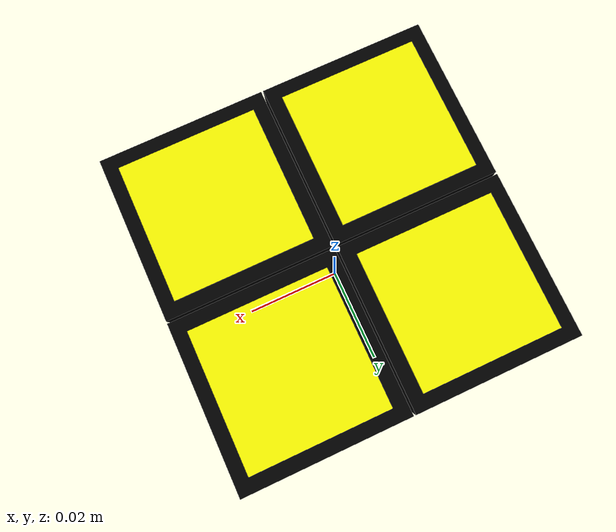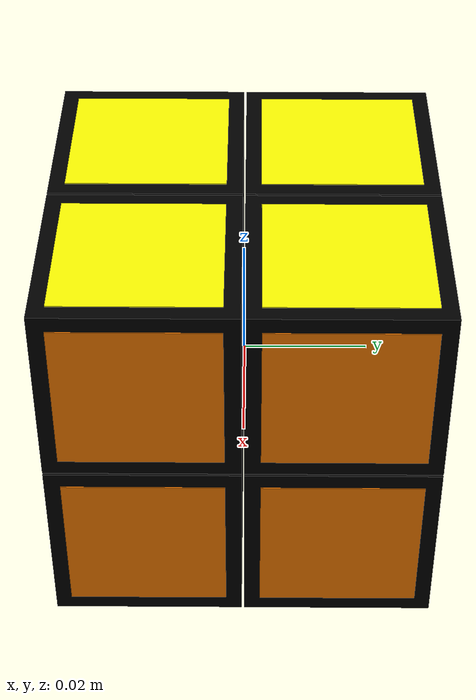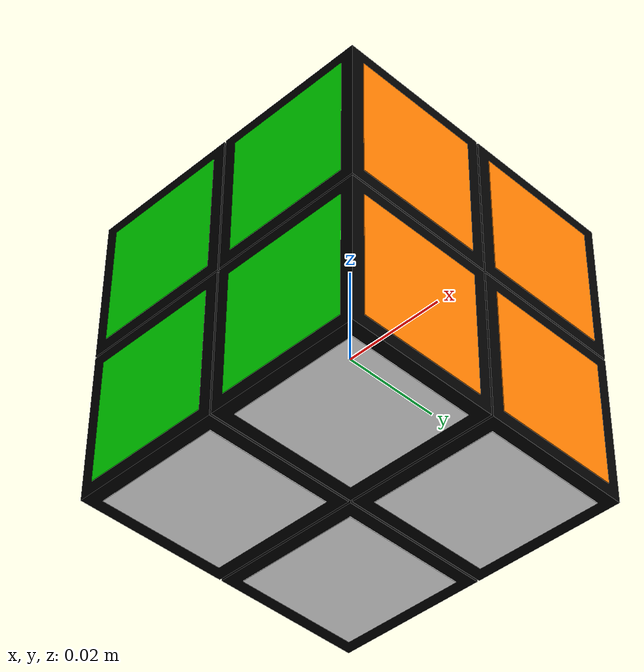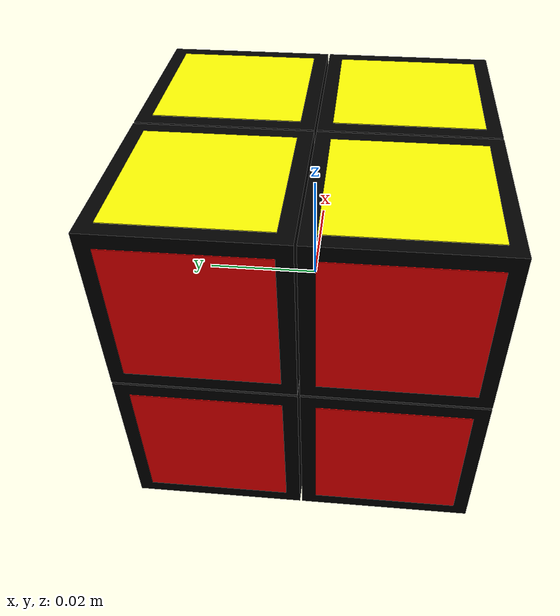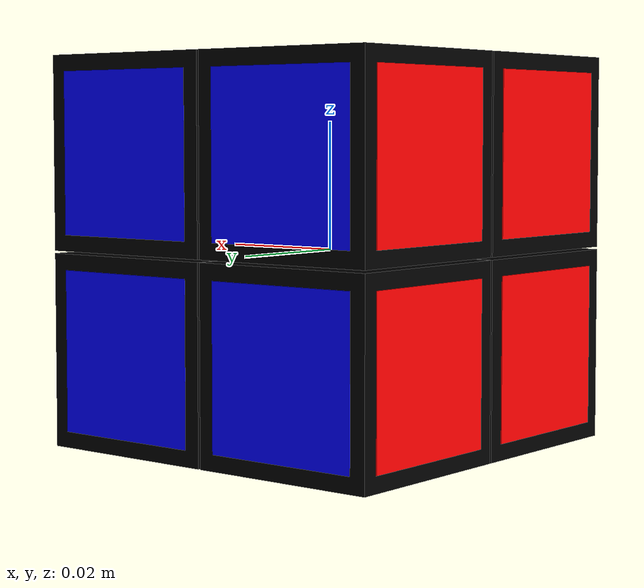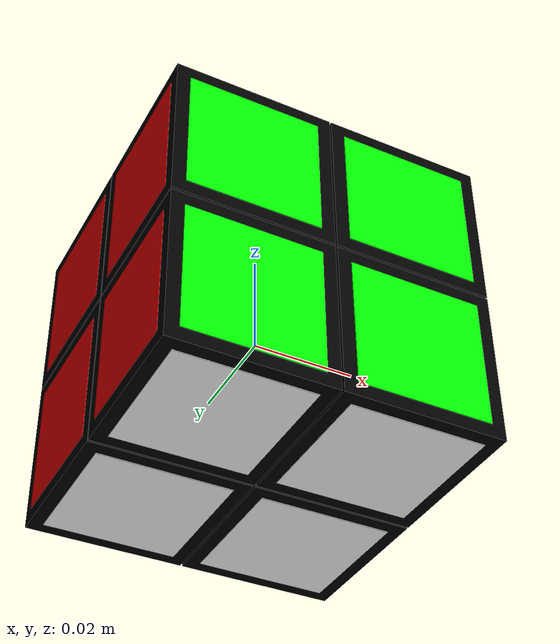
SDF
<?xml version="1.0" ?>
<sdf version="1.7">
	<model name="mirror_cube_2x2">
		<link name="center"/>
		<link name="cubie_0_0_0">
			<pose>-0.0152 -0.0152 -0.0152 0.0 0.0 0.0</pose>
			<inertial>
				<mass>0.01053</mass>
				<inertia>
					<ixx>1.5794999999999999e-06</ixx>
					<ixy>0.0</ixy>
					<ixz>0.0</ixz>
					<iyy>1.5794999999999999e-06</iyy>
					<iyz>0.0</iyz>
					<izz>1.5794999999999999e-06</izz>
				</inertia>
			</inertial>
			<collision name="collision">
				<geometry>
					<box>
						<size>0.03 0.03 0.03</size>
					</box>
				</geometry>
				<surface>
					<friction>
						<ode>
							<mu>0</mu>
							<mu2>0</mu2>
						</ode>
					</friction>
				</surface>
			</collision>
			<visual name="black">
				<geometry>
					<box>
						<size>0.03 0.03 0.03</size>
					</box>
				</geometry>
				<material>
					<diffuse>0 0 0 1</diffuse>
				</material>
			</visual>
			<visual name="red">
				<pose>-0.015 0.0 0.0 0.0 0.0 0.0</pose>
				<geometry>
					<box>
						<size>0.00025 0.025 0.025</size>
					</box>
				</geometry>
				<material>
					<diffuse>1 0 0 1</diffuse>
				</material>
			</visual>
			<visual name="green">
				<pose>0.0 -0.015 0.0 0.0 0.0 0.0</pose>
				<geometry>
					<box>
						<size>0.025 0.00025 0.025</size>
					</box>
				</geometry>
				<material>
					<diffuse>0 1 0 1</diffuse>
				</material>
			</visual>
			<visual name="white">
				<pose>0.0 0.0 -0.015 0.0 0.0 0.0</pose>
				<geometry>
					<box>
						<size>0.025 0.025 0.00025</size>
					</box>
				</geometry>
				<material>
					<diffuse>1 1 1 1</diffuse>
				</material>
			</visual>
		</link>
		<joint name="ball_0_0_0" type="ball">
			<pose>0.0152 0.0152 0.0152 -0.0 -0.0 -0.0</pose>
			<parent>center</parent>
			<child>cubie_0_0_0</child>
			<axis>
				<dynamics>
					<damping>0.1</damping>
				</dynamics>
				<limit>
					<effort>0</effort>
				</limit>
			</axis>
		</joint>
		<link name="cubie_0_0_1">
			<pose>-0.0152 -0.0152 0.0152 0.0 0.0 0.0</pose>
			<inertial>
				<mass>0.01053</mass>
				<inertia>
					<ixx>1.5794999999999999e-06</ixx>
					<ixy>0.0</ixy>
					<ixz>0.0</ixz>
					<iyy>1.5794999999999999e-06</iyy>
					<iyz>0.0</iyz>
					<izz>1.5794999999999999e-06</izz>
				</inertia>
			</inertial>
			<collision name="collision">
				<geometry>
					<box>
						<size>0.03 0.03 0.03</size>
					</box>
				</geometry>
				<surface>
					<friction>
						<ode>
							<mu>0</mu>
							<mu2>0</mu2>
						</ode>
					</friction>
				</surface>
			</collision>
			<visual name="black">
				<geometry>
					<box>
						<size>0.03 0.03 0.03</size>
					</box>
				</geometry>
				<material>
					<diffuse>0 0 0 1</diffuse>
				</material>
			</visual>
			<visual name="red">
				<pose>-0.015 0.0 0.0 0.0 0.0 0.0</pose>
				<geometry>
					<box>
						<size>0.00025 0.025 0.025</size>
					</box>
				</geometry>
				<material>
					<diffuse>1 0 0 1</diffuse>
				</material>
			</visual>
			<visual name="green">
				<pose>0.0 -0.015 0.0 0.0 0.0 0.0</pose>
				<geometry>
					<box>
						<size>0.025 0.00025 0.025</size>
					</box>
				</geometry>
				<material>
					<diffuse>0 1 0 1</diffuse>
				</material>
			</visual>
			<visual name="yellow">
				<pose>0.0 0.0 0.015 0.0 0.0 0.0</pose>
				<geometry>
					<box>
						<size>0.025 0.025 0.00025</size>
					</box>
				</geometry>
				<material>
					<diffuse>1 1 0 1</diffuse>
				</material>
			</visual>
		</link>
		<joint name="ball_0_0_1" type="ball">
			<pose>0.0152 0.0152 -0.0152 -0.0 -0.0 -0.0</pose>
			<parent>center</parent>
			<child>cubie_0_0_1</child>
			<axis>
				<dynamics>
					<damping>0.1</damping>
				</dynamics>
				<limit>
					<effort>0</effort>
				</limit>
			</axis>
		</joint>
		<link name="cubie_0_1_0">
			<pose>-0.0152 0.0152 -0.0152 0.0 0.0 0.0</pose>
			<inertial>
				<mass>0.01053</mass>
				<inertia>
					<ixx>1.5794999999999999e-06</ixx>
					<ixy>0.0</ixy>
					<ixz>0.0</ixz>
					<iyy>1.5794999999999999e-06</iyy>
					<iyz>0.0</iyz>
					<izz>1.5794999999999999e-06</izz>
				</inertia>
			</inertial>
			<collision name="collision">
				<geometry>
					<box>
						<size>0.03 0.03 0.03</size>
					</box>
				</geometry>
				<surface>
					<friction>
						<ode>
							<mu>0</mu>
							<mu2>0</mu2>
						</ode>
					</friction>
				</surface>
			</collision>
			<visual name="black">
				<geometry>
					<box>
						<size>0.03 0.03 0.03</size>
					</box>
				</geometry>
				<material>
					<diffuse>0 0 0 1</diffuse>
				</material>
			</visual>
			<visual name="red">
				<pose>-0.015 0.0 0.0 0.0 0.0 0.0</pose>
				<geometry>
					<box>
						<size>0.00025 0.025 0.025</size>
					</box>
				</geometry>
				<material>
					<diffuse>1 0 0 1</diffuse>
				</material>
			</visual>
			<visual name="blue">
				<pose>0.0 0.015 0.0 0.0 0.0 0.0</pose>
				<geometry>
					<box>
						<size>0.025 0.00025 0.025</size>
					</box>
				</geometry>
				<material>
					<diffuse>0 0 1 1</diffuse>
				</material>
			</visual>
			<visual name="white">
				<pose>0.0 0.0 -0.015 0.0 0.0 0.0</pose>
				<geometry>
					<box>
						<size>0.025 0.025 0.00025</size>
					</box>
				</geometry>
				<material>
					<diffuse>1 1 1 1</diffuse>
				</material>
			</visual>
		</link>
		<joint name="ball_0_1_0" type="ball">
			<pose>0.0152 -0.0152 0.0152 -0.0 -0.0 -0.0</pose>
			<parent>center</parent>
			<child>cubie_0_1_0</child>
			<axis>
				<dynamics>
					<damping>0.1</damping>
				</dynamics>
				<limit>
					<effort>0</effort>
				</limit>
			</axis>
		</joint>
		<link name="cubie_0_1_1">
			<pose>-0.0152 0.0152 0.0152 0.0 0.0 0.0</pose>
			<inertial>
				<mass>0.01053</mass>
				<inertia>
					<ixx>1.5794999999999999e-06</ixx>
					<ixy>0.0</ixy>
					<ixz>0.0</ixz>
					<iyy>1.5794999999999999e-06</iyy>
					<iyz>0.0</iyz>
					<izz>1.5794999999999999e-06</izz>
				</inertia>
			</inertial>
			<collision name="collision">
				<geometry>
					<box>
						<size>0.03 0.03 0.03</size>
					</box>
				</geometry>
				<surface>
					<friction>
						<ode>
							<mu>0</mu>
							<mu2>0</mu2>
						</ode>
					</friction>
				</surface>
			</collision>
			<visual name="black">
				<geometry>
					<box>
						<size>0.03 0.03 0.03</size>
					</box>
				</geometry>
				<material>
					<diffuse>0 0 0 1</diffuse>
				</material>
			</visual>
			<visual name="red">
				<pose>-0.015 0.0 0.0 0.0 0.0 0.0</pose>
				<geometry>
					<box>
						<size>0.00025 0.025 0.025</size>
					</box>
				</geometry>
				<material>
					<diffuse>1 0 0 1</diffuse>
				</material>
			</visual>
			<visual name="blue">
				<pose>0.0 0.015 0.0 0.0 0.0 0.0</pose>
				<geometry>
					<box>
						<size>0.025 0.00025 0.025</size>
					</box>
				</geometry>
				<material>
					<diffuse>0 0 1 1</diffuse>
				</material>
			</visual>
			<visual name="yellow">
				<pose>0.0 0.0 0.015 0.0 0.0 0.0</pose>
				<geometry>
					<box>
						<size>0.025 0.025 0.00025</size>
					</box>
				</geometry>
				<material>
					<diffuse>1 1 0 1</diffuse>
				</material>
			</visual>
		</link>
		<joint name="ball_0_1_1" type="ball">
			<pose>0.0152 -0.0152 -0.0152 -0.0 -0.0 -0.0</pose>
			<parent>center</parent>
			<child>cubie_0_1_1</child>
			<axis>
				<dynamics>
					<damping>0.1</damping>
				</dynamics>
				<limit>
					<effort>0</effort>
				</limit>
			</axis>
		</joint>
		<link name="cubie_1_0_0">
			<pose>0.0152 -0.0152 -0.0152 0.0 0.0 0.0</pose>
			<inertial>
				<mass>0.01053</mass>
				<inertia>
					<ixx>1.5794999999999999e-06</ixx>
					<ixy>0.0</ixy>
					<ixz>0.0</ixz>
					<iyy>1.5794999999999999e-06</iyy>
					<iyz>0.0</iyz>
					<izz>1.5794999999999999e-06</izz>
				</inertia>
			</inertial>
			<collision name="collision">
				<geometry>
					<box>
						<size>0.03 0.03 0.03</size>
					</box>
				</geometry>
				<surface>
					<friction>
						<ode>
							<mu>0</mu>
							<mu2>0</mu2>
						</ode>
					</friction>
				</surface>
			</collision>
			<visual name="black">
				<geometry>
					<box>
						<size>0.03 0.03 0.03</size>
					</box>
				</geometry>
				<material>
					<diffuse>0 0 0 1</diffuse>
				</material>
			</visual>
			<visual name="orange">
				<pose>0.015 0.0 0.0 0.0 0.0 0.0</pose>
				<geometry>
					<box>
						<size>0.00025 0.025 0.025</size>
					</box>
				</geometry>
				<material>
					<diffuse>1.0 0.5 0.0 1.0</diffuse>
				</material>
			</visual>
			<visual name="green">
				<pose>0.0 -0.015 0.0 0.0 0.0 0.0</pose>
				<geometry>
					<box>
						<size>0.025 0.00025 0.025</size>
					</box>
				</geometry>
				<material>
					<diffuse>0 1 0 1</diffuse>
				</material>
			</visual>
			<visual name="white">
				<pose>0.0 0.0 -0.015 0.0 0.0 0.0</pose>
				<geometry>
					<box>
						<size>0.025 0.025 0.00025</size>
					</box>
				</geometry>
				<material>
					<diffuse>1 1 1 1</diffuse>
				</material>
			</visual>
		</link>
		<joint name="ball_1_0_0" type="ball">
			<pose>-0.0152 0.0152 0.0152 -0.0 -0.0 -0.0</pose>
			<parent>center</parent>
			<child>cubie_1_0_0</child>
			<axis>
				<dynamics>
					<damping>0.1</damping>
				</dynamics>
				<limit>
					<effort>0</effort>
				</limit>
			</axis>
		</joint>
		<link name="cubie_1_0_1">
			<pose>0.0152 -0.0152 0.0152 0.0 0.0 0.0</pose>
			<inertial>
				<mass>0.01053</mass>
				<inertia>
					<ixx>1.5794999999999999e-06</ixx>
					<ixy>0.0</ixy>
					<ixz>0.0</ixz>
					<iyy>1.5794999999999999e-06</iyy>
					<iyz>0.0</iyz>
					<izz>1.5794999999999999e-06</izz>
				</inertia>
			</inertial>
			<collision name="collision">
				<geometry>
					<box>
						<size>0.03 0.03 0.03</size>
					</box>
				</geometry>
				<surface>
					<friction>
						<ode>
							<mu>0</mu>
							<mu2>0</mu2>
						</ode>
					</friction>
				</surface>
			</collision>
			<visual name="black">
				<geometry>
					<box>
						<size>0.03 0.03 0.03</size>
					</box>
				</geometry>
				<material>
					<diffuse>0 0 0 1</diffuse>
				</material>
			</visual>
			<visual name="orange">
				<pose>0.015 0.0 0.0 0.0 0.0 0.0</pose>
				<geometry>
					<box>
						<size>0.00025 0.025 0.025</size>
					</box>
				</geometry>
				<material>
					<diffuse>1.0 0.5 0.0 1.0</diffuse>
				</material>
			</visual>
			<visual name="green">
				<pose>0.0 -0.015 0.0 0.0 0.0 0.0</pose>
				<geometry>
					<box>
						<size>0.025 0.00025 0.025</size>
					</box>
				</geometry>
				<material>
					<diffuse>0 1 0 1</diffuse>
				</material>
			</visual>
			<visual name="yellow">
				<pose>0.0 0.0 0.015 0.0 0.0 0.0</pose>
				<geometry>
					<box>
						<size>0.025 0.025 0.00025</size>
					</box>
				</geometry>
				<material>
					<diffuse>1 1 0 1</diffuse>
				</material>
			</visual>
		</link>
		<joint name="ball_1_0_1" type="ball">
			<pose>-0.0152 0.0152 -0.0152 -0.0 -0.0 -0.0</pose>
			<parent>center</parent>
			<child>cubie_1_0_1</child>
			<axis>
				<dynamics>
					<damping>0.1</damping>
				</dynamics>
				<limit>
					<effort>0</effort>
				</limit>
			</axis>
		</joint>
		<link name="cubie_1_1_0">
			<pose>0.0152 0.0152 -0.0152 0.0 0.0 0.0</pose>
			<inertial>
				<mass>0.01053</mass>
				<inertia>
					<ixx>1.5794999999999999e-06</ixx>
					<ixy>0.0</ixy>
					<ixz>0.0</ixz>
					<iyy>1.5794999999999999e-06</iyy>
					<iyz>0.0</iyz>
					<izz>1.5794999999999999e-06</izz>
				</inertia>
			</inertial>
			<collision name="collision">
				<geometry>
					<box>
						<size>0.03 0.03 0.03</size>
					</box>
				</geometry>
				<surface>
					<friction>
						<ode>
							<mu>0</mu>
							<mu2>0</mu2>
						</ode>
					</friction>
				</surface>
			</collision>
			<visual name="black">
				<geometry>
					<box>
						<size>0.03 0.03 0.03</size>
					</box>
				</geometry>
				<material>
					<diffuse>0 0 0 1</diffuse>
				</material>
			</visual>
			<visual name="orange">
				<pose>0.015 0.0 0.0 0.0 0.0 0.0</pose>
				<geometry>
					<box>
						<size>0.00025 0.025 0.025</size>
					</box>
				</geometry>
				<material>
					<diffuse>1.0 0.5 0.0 1.0</diffuse>
				</material>
			</visual>
			<visual name="blue">
				<pose>0.0 0.015 0.0 0.0 0.0 0.0</pose>
				<geometry>
					<box>
						<size>0.025 0.00025 0.025</size>
					</box>
				</geometry>
				<material>
					<diffuse>0 0 1 1</diffuse>
				</material>
			</visual>
			<visual name="white">
				<pose>0.0 0.0 -0.015 0.0 0.0 0.0</pose>
				<geometry>
					<box>
						<size>0.025 0.025 0.00025</size>
					</box>
				</geometry>
				<material>
					<diffuse>1 1 1 1</diffuse>
				</material>
			</visual>
		</link>
		<joint name="ball_1_1_0" type="ball">
			<pose>-0.0152 -0.0152 0.0152 -0.0 -0.0 -0.0</pose>
			<parent>center</parent>
			<child>cubie_1_1_0</child>
			<axis>
				<dynamics>
					<damping>0.1</damping>
				</dynamics>
				<limit>
					<effort>0</effort>
				</limit>
			</axis>
		</joint>
		<link name="cubie_1_1_1">
			<pose>0.0152 0.0152 0.0152 0.0 0.0 0.0</pose>
			<inertial>
				<mass>0.01053</mass>
				<inertia>
					<ixx>1.5794999999999999e-06</ixx>
					<ixy>0.0</ixy>
					<ixz>0.0</ixz>
					<iyy>1.5794999999999999e-06</iyy>
					<iyz>0.0</iyz>
					<izz>1.5794999999999999e-06</izz>
				</inertia>
			</inertial>
			<collision name="collision">
				<geometry>
					<box>
						<size>0.03 0.03 0.03</size>
					</box>
				</geometry>
				<surface>
					<friction>
						<ode>
							<mu>0</mu>
							<mu2>0</mu2>
						</ode>
					</friction>
				</surface>
			</collision>
			<visual name="black">
				<geometry>
					<box>
						<size>0.03 0.03 0.03</size>
					</box>
				</geometry>
				<material>
					<diffuse>0 0 0 1</diffuse>
				</material>
			</visual>
			<visual name="orange">
				<pose>0.015 0.0 0.0 0.0 0.0 0.0</pose>
				<geometry>
					<box>
						<size>0.00025 0.025 0.025</size>
					</box>
				</geometry>
				<material>
					<diffuse>1.0 0.5 0.0 1.0</diffuse>
				</material>
			</visual>
			<visual name="blue">
				<pose>0.0 0.015 0.0 0.0 0.0 0.0</pose>
				<geometry>
					<box>
						<size>0.025 0.00025 0.025</size>
					</box>
				</geometry>
				<material>
					<diffuse>0 0 1 1</diffuse>
				</material>
			</visual>
			<visual name="yellow">
				<pose>0.0 0.0 0.015 0.0 0.0 0.0</pose>
				<geometry>
					<box>
						<size>0.025 0.025 0.00025</size>
					</box>
				</geometry>
				<material>
					<diffuse>1 1 0 1</diffuse>
				</material>
			</visual>
		</link>
		<joint name="ball_1_1_1" type="ball">
			<pose>-0.0152 -0.0152 -0.0152 -0.0 -0.0 -0.0</pose>
			<parent>center</parent>
			<child>cubie_1_1_1</child>
			<axis>
				<dynamics>
					<damping>0.1</damping>
				</dynamics>
				<limit>
					<effort>0</effort>
				</limit>
			</axis>
		</joint>
	</model>
</sdf>
